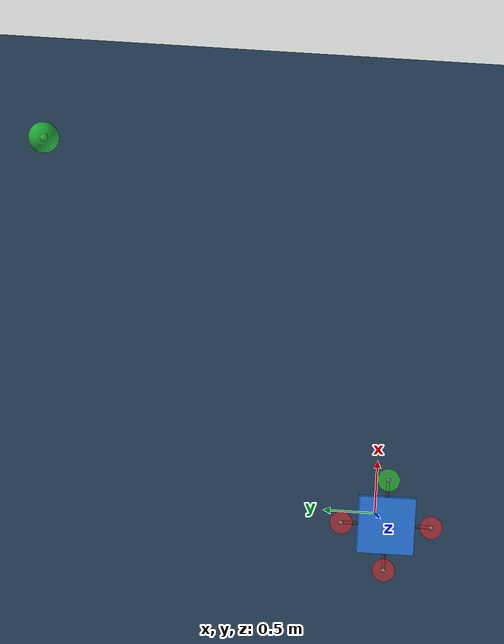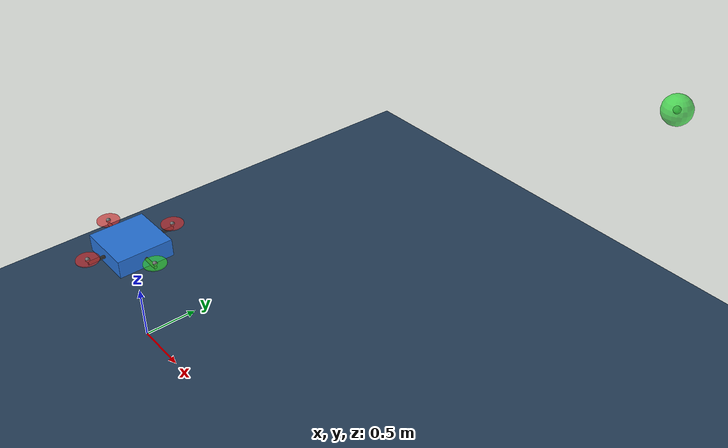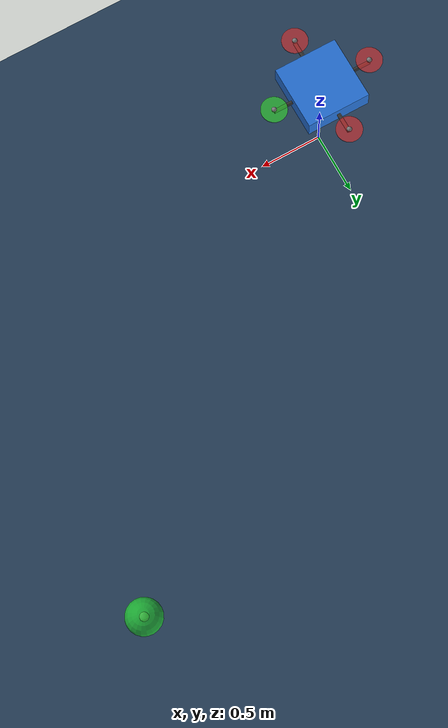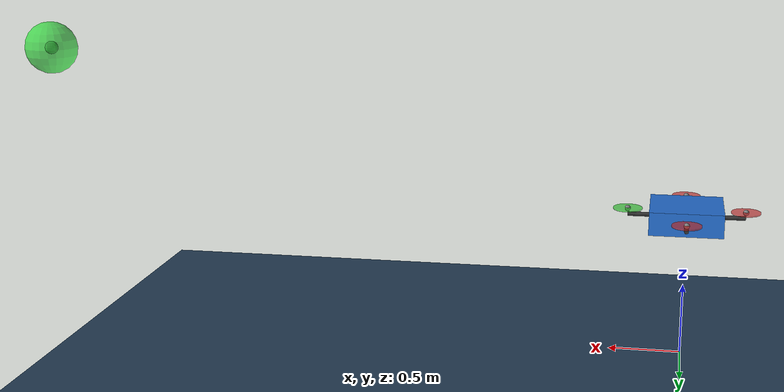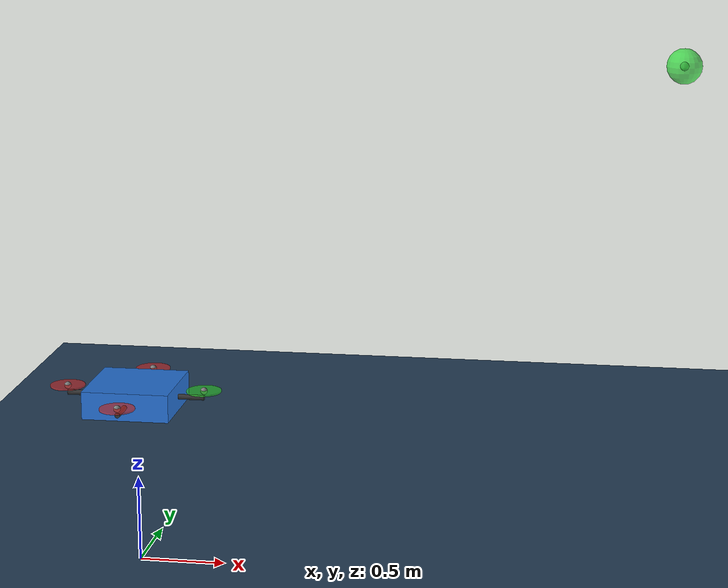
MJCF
<mujoco model="quadrotor">

    <!-- Step 3: Simulation Parameters (timestep=0.002, gravity=-9.81 m/s^2) -->
    <option timestep="0.002" gravity="0 0 -9.81"/>

    <asset>
        <texture type="2d" name="groundplane" builtin="checker" mark="edge" rgb1="0.2 0.3 0.4" rgb2="0.1 0.2 0.3" markrgb="0.8 0.8 0.8" width="300" height="300"/>
        <material name="groundplane" texture="groundplane" texrepeat="5 5" texuniform="true"/>
        <material name="body_mat" rgba="0.15 0.45 0.85 1.0" metallic="0.4"/>
        <material name="arm_mat" rgba="0.2 0.2 0.2 1.0"/>
        <material name="rotor1_mat" rgba="0.2 0.85 0.2 0.7"/> <!-- Motor 1 (Front +X) Green -->
        <material name="rotor_mat" rgba="0.85 0.2 0.2 0.7"/>  <!-- Motors 2, 3, 4 Red -->
    </asset>

    <worldbody>
        <light pos="0 0 10" dir="0 0 -1" directional="true"/>

        <!-- Step 3: Ground Plane -->
        <geom name="ground" type="plane" size="20 20 0.1" material="groundplane"/>

        <!-- Destination Target Visual Marker (Mocap Body) -->
        <body name="target_marker" pos="3.0 3.0 2.5" mocap="true">
            <geom name="target_geom" type="sphere" size="0.12" rgba="0.15 0.9 0.2 0.7" contype="0" conaffinity="0"/>
            <site name="target_site" pos="0 0 0" size="0.03"/>
        </body>

        <!-- Step 4 & 5: Drone Central Body with Free Joint and Inertia -->
        <body name="quadrotor" pos="0 0 1.0">
            <!-- Step 4: Free Joint for 6-DOF translation and rotation -->
            <freejoint name="quad_free"/>

            <!-- Step 5: Mass = 1.0 kg, Inertia J = diag(0.1, 0.1, 0.12) -->
            <inertial pos="0 0 0" mass="1.0" diaginertia="0.1 0.1 0.12"/>

            <!-- Central Body Geometry -->
            <geom name="main_body" type="box" size="0.25 0.25 0.08" material="body_mat"/>

            <!-- Step 6: Four Visual Cross Arms (L = 0.4m) -->
            <geom name="arm1" type="cylinder" fromto="0 0 0  0.4 0 0" size="0.015" material="arm_mat"/>
            <geom name="arm2" type="cylinder" fromto="0 0 0  0 0.4 0" size="0.015" material="arm_mat"/>
            <geom name="arm3" type="cylinder" fromto="0 0 0 -0.4 0 0" size="0.015" material="arm_mat"/>
            <geom name="arm4" type="cylinder" fromto="0 0 0  0 -0.4 0" size="0.015" material="arm_mat"/>

            <!-- Step 7: Four Rotor Objects (Visual Discs & Sites) -->
            <!-- Motor 1 (Front +X) -->
            <geom name="rotor1" type="cylinder" pos="0.4 0 0.04" size="0.1 0.005" material="rotor1_mat"/>
            <site name="rotor1_site" pos="0.4 0 0.04" size="0.02"/>

            <!-- Motor 2 (Left +Y) -->
            <geom name="rotor2" type="cylinder" pos="0 0.4 0.04" size="0.1 0.005" material="rotor_mat"/>
            <site name="rotor2_site" pos="0 0.4 0.04" size="0.02"/>

            <!-- Motor 3 (Back -X) -->
            <geom name="rotor3" type="cylinder" pos="-0.4 0 0.04" size="0.1 0.005" material="rotor_mat"/>
            <site name="rotor3_site" pos="-0.4 0 0.04" size="0.02"/>

            <!-- Motor 4 (Right -Y) -->
            <geom name="rotor4" type="cylinder" pos="0 -0.4 0.04" size="0.1 0.005" material="rotor_mat"/>
            <site name="rotor4_site" pos="0 -0.4 0.04" size="0.02"/>

            <!-- Center Site -->
            <site name="quad_center" pos="0 0 0" size="0.02"/>
        </body>
    </worldbody>

    <!-- Step 8: Motor Thrust Actuators -->
    <actuator>
        <general name="thrust_motor1" site="rotor1_site" gear="0 0 1 0 0 0" ctrlrange="0 20"/>
        <general name="thrust_motor2" site="rotor2_site" gear="0 0 1 0 0 0" ctrlrange="0 20"/>
        <general name="thrust_motor3" site="rotor3_site" gear="0 0 1 0 0 0" ctrlrange="0 20"/>
        <general name="thrust_motor4" site="rotor4_site" gear="0 0 1 0 0 0" ctrlrange="0 20"/>

        <!-- Reaction Yaw Torque Actuator -->
        <general name="yaw_torque" site="quad_center" gear="0 0 0 0 0 1" ctrlrange="-10 10"/>
    </actuator>

</mujoco>
